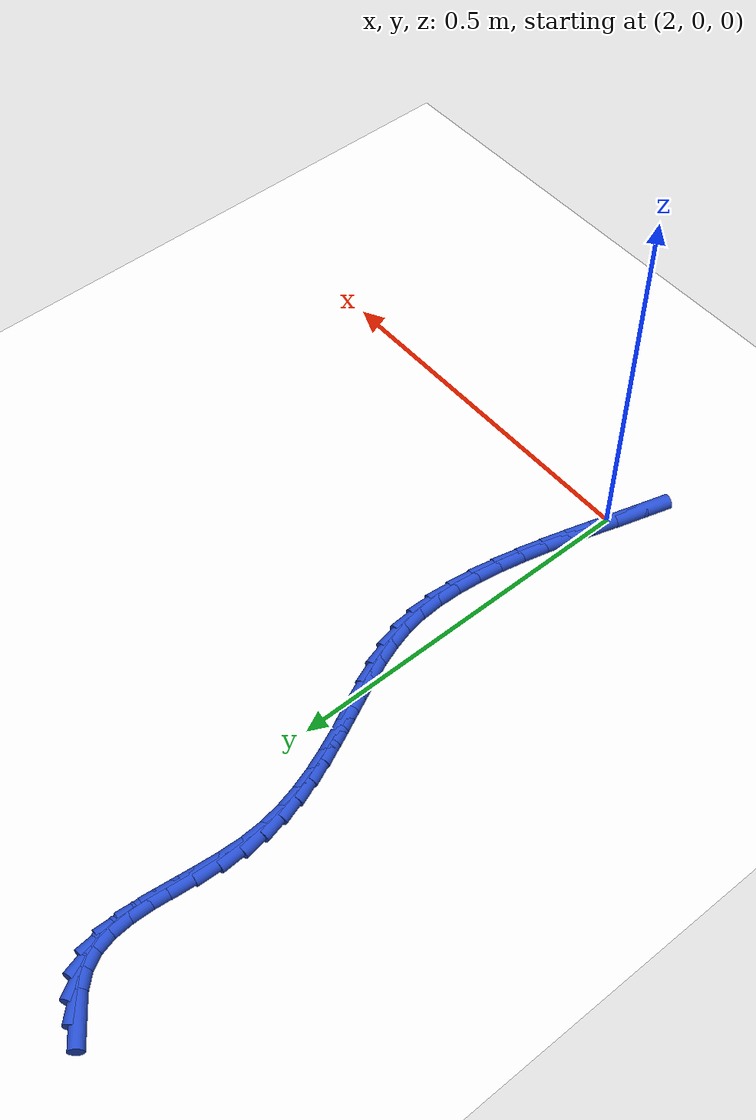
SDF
<sdf version="1.6">
 <world name="default">
  <model name="ground_plane">
   <static>1</static>
   <link name="link">
    <collision name="collision">
     <geometry><plane><normal>0 0 1</normal><size>100 100</size></plane></geometry>
     <surface><friction><ode><mu>100</mu><mu2>50</mu2></ode></friction></surface>
    </collision>
    <visual name="visual">
     <cast_shadows>0</cast_shadows>
     <geometry><plane><normal>0 0 1</normal><size>100 100</size></plane></geometry>
     <material>
      <script><uri>file://media/materials/scripts/gazebo.material</uri><name>Gazebo/WhiteGlow</name></script>
     </material>
    </visual>
   </link>
  </model>
  <model name="line">
   <link name="link_98">
    <pose>1.8763292277456687 0.9052922986258315 0.01 0 1.57 -0.6354654223614297</pose>
    <collision name="collision">
     <geometry><cylinder><radius>0.01</radius><length>0.08</length></cylinder></geometry>
    </collision>
    <visual name="visual">
     <material>
      <script><name>Gazebo/Blue</name><uri>file://media/materials/scripts/gazebo.material</uri></script>
     </material>
     <geometry><cylinder><radius>0.01</radius><length>0.08</length></cylinder></geometry>
    </visual>
   </link>
   <link name="link_99">
    <pose>1.89762387890149 0.8895870847494487 0.01 0 1.57 -0.8090941999757213</pose>
    <collision name="collision">
     <geometry><cylinder><radius>0.01</radius><length>0.08</length></cylinder></geometry>
    </collision>
    <visual name="visual">
     <material>
      <script><name>Gazebo/Blue</name><uri>file://media/materials/scripts/gazebo.material</uri></script>
     </material>
     <geometry><cylinder><radius>0.01</radius><length>0.08</length></cylinder></geometry>
    </visual>
   </link>
   <link name="link_100">
    <pose>1.9146818472040508 0.8717009240719789 0.01 0 1.57 -1.0454757915059043</pose>
    <collision name="collision">
     <geometry><cylinder><radius>0.01</radius><length>0.08</length></cylinder></geometry>
    </collision>
    <visual name="visual">
     <material>
      <script><name>Gazebo/Blue</name><uri>file://media/materials/scripts/gazebo.material</uri></script>
     </material>
     <geometry><cylinder><radius>0.01</radius><length>0.08</length></cylinder></geometry>
    </visual>
   </link>
   <link name="link_101">
    <pose>1.9266790238036149 0.8510035840859422 0.01 0 1.57 -1.3026939856862048</pose>
    <collision name="collision">
     <geometry><cylinder><radius>0.01</radius><length>0.08</length></cylinder></geometry>
    </collision>
    <visual name="visual">
     <material>
      <script><name>Gazebo/Blue</name><uri>file://media/materials/scripts/gazebo.material</uri></script>
     </material>
     <geometry><cylinder><radius>0.01</radius><length>0.08</length></cylinder></geometry>
    </visual>
   </link>
   <link name="link_102">
    <pose>1.9332368112246647 0.8271324489828652 0.01 0 1.57 -1.4917263919659192</pose>
    <collision name="collision">
     <geometry><cylinder><radius>0.01</radius><length>0.08</length></cylinder></geometry>
    </collision>
    <visual name="visual">
     <material>
      <script><name>Gazebo/Blue</name><uri>file://media/materials/scripts/gazebo.material</uri></script>
     </material>
     <geometry><cylinder><radius>0.01</radius><length>0.08</length></cylinder></geometry>
    </visual>
   </link>
   <link name="link_103">
    <pose>1.935343397925086 0.8005459251793239 0.01 0 1.57 1.5326369243613807</pose>
    <collision name="collision">
     <geometry><cylinder><radius>0.01</radius><length>0.08</length></cylinder></geometry>
    </collision>
    <visual name="visual">
     <material>
      <script><name>Gazebo/Blue</name><uri>file://media/materials/scripts/gazebo.material</uri></script>
     </material>
     <geometry><cylinder><radius>0.01</radius><length>0.08</length></cylinder></geometry>
    </visual>
   </link>
   <link name="link_104">
    <pose>1.9342482033152713 0.7718593393620259 0.01 0 1.57 1.4701293704433795</pose>
    <collision name="collision">
     <geometry><cylinder><radius>0.01</radius><length>0.08</length></cylinder></geometry>
    </collision>
    <visual name="visual">
     <material>
      <script><name>Gazebo/Blue</name><uri>file://media/materials/scripts/gazebo.material</uri></script>
     </material>
     <geometry><cylinder><radius>0.01</radius><length>0.08</length></cylinder></geometry>
    </visual>
   </link>
   <link name="link_105">
    <pose>1.9312006468056162 0.7416880182176787 0.01 0 1.57 1.450554102044886</pose>
    <collision name="collision">
     <geometry><cylinder><radius>0.01</radius><length>0.08</length></cylinder></geometry>
    </collision>
    <visual name="visual">
     <material>
      <script><name>Gazebo/Blue</name><uri>file://media/materials/scripts/gazebo.material</uri></script>
     </material>
     <geometry><cylinder><radius>0.01</radius><length>0.08</length></cylinder></geometry>
    </visual>
   </link>
   <link name="link_106">
    <pose>1.927450147806513 0.7106472884329887 0.01 0 1.57 1.468769924445494</pose>
    <collision name="collision">
     <geometry><cylinder><radius>0.01</radius><length>0.08</length></cylinder></geometry>
    </collision>
    <visual name="visual">
     <material>
      <script><name>Gazebo/Blue</name><uri>file://media/materials/scripts/gazebo.material</uri></script>
     </material>
     <geometry><cylinder><radius>0.01</radius><length>0.08</length></cylinder></geometry>
    </visual>
   </link>
   <link name="link_107">
    <pose>1.9242461257283567 0.6793524766946641 0.01 0 1.57 1.525306767367429</pose>
    <collision name="collision">
     <geometry><cylinder><radius>0.01</radius><length>0.08</length></cylinder></geometry>
    </collision>
    <visual name="visual">
     <material>
      <script><name>Gazebo/Blue</name><uri>file://media/materials/scripts/gazebo.material</uri></script>
     </material>
     <geometry><cylinder><radius>0.01</radius><length>0.08</length></cylinder></geometry>
    </visual>
   </link>
   <link name="link_108">
    <pose>1.9228379999815397 0.6484189096894115 0.01 0 1.57 -1.5208433378968895</pose>
    <collision name="collision">
     <geometry><cylinder><radius>0.01</radius><length>0.08</length></cylinder></geometry>
    </collision>
    <visual name="visual">
     <material>
      <script><name>Gazebo/Blue</name><uri>file://media/materials/scripts/gazebo.material</uri></script>
     </material>
     <geometry><cylinder><radius>0.01</radius><length>0.08</length></cylinder></geometry>
    </visual>
   </link>
   <link name="link_109">
    <pose>1.9243387460610362 0.6184007339253879 0.01 0 1.57 -1.418468475114225</pose>
    <collision name="collision">
     <geometry><cylinder><radius>0.01</radius><length>0.08</length></cylinder></geometry>
    </collision>
    <visual name="visual">
     <material>
      <script><name>Gazebo/Blue</name><uri>file://media/materials/scripts/gazebo.material</uri></script>
     </material>
     <geometry><cylinder><radius>0.01</radius><length>0.08</length></cylinder></geometry>
    </visual>
   </link>
   <link name="link_110">
    <pose>1.9287948614208552 0.5893738971082219 0.01 0 1.57 -1.3288204084667476</pose>
    <collision name="collision">
     <geometry><cylinder><radius>0.01</radius><length>0.08</length></cylinder></geometry>
    </collision>
    <visual name="visual">
     <material>
      <script><name>Gazebo/Blue</name><uri>file://media/materials/scripts/gazebo.material</uri></script>
     </material>
     <geometry><cylinder><radius>0.01</radius><length>0.08</length></cylinder></geometry>
    </visual>
   </link>
   <link name="link_111">
    <pose>1.9357511360544668 0.561189385999545 0.01 0 1.57 -1.254485420245834</pose>
    <collision name="collision">
     <geometry><cylinder><radius>0.01</radius><length>0.08</length></cylinder></geometry>
    </collision>
    <visual name="visual">
     <material>
      <script><name>Gazebo/Blue</name><uri>file://media/materials/scripts/gazebo.material</uri></script>
     </material>
     <geometry><cylinder><radius>0.01</radius><length>0.08</length></cylinder></geometry>
    </visual>
   </link>
   <link name="link_112">
    <pose>1.9447494385160182 0.5336968774148543 0.01 0 1.57 -1.1966435938141928</pose>
    <collision name="collision">
     <geometry><cylinder><radius>0.01</radius><length>0.08</length></cylinder></geometry>
    </collision>
    <visual name="visual">
     <material>
      <script><name>Gazebo/Blue</name><uri>file://media/materials/scripts/gazebo.material</uri></script>
     </material>
     <geometry><cylinder><radius>0.01</radius><length>0.08</length></cylinder></geometry>
    </visual>
   </link>
   <link name="link_113">
    <pose>1.9553316373596554 0.5067460481696471 0.01 0 1.57 -1.1556021313296305</pose>
    <collision name="collision">
     <geometry><cylinder><radius>0.01</radius><length>0.08</length></cylinder></geometry>
    </collision>
    <visual name="visual">
     <material>
      <script><name>Gazebo/Blue</name><uri>file://media/materials/scripts/gazebo.material</uri></script>
     </material>
     <geometry><cylinder><radius>0.01</radius><length>0.08</length></cylinder></geometry>
    </visual>
   </link>
   <link name="link_114">
    <pose>1.9670396011395255 0.4801865750794199 0.01 0 1.57 -1.131250892465633</pose>
    <collision name="collision">
     <geometry><cylinder><radius>0.01</radius><length>0.08</length></cylinder></geometry>
    </collision>
    <visual name="visual">
     <material>
      <script><name>Gazebo/Blue</name><uri>file://media/materials/scripts/gazebo.material</uri></script>
     </material>
     <geometry><cylinder><radius>0.01</radius><length>0.08</length></cylinder></geometry>
    </visual>
   </link>
   <link name="link_115">
    <pose>1.9794151984097739 0.4538681349596699 0.01 0 1.57 -1.1234068577112946</pose>
    <collision name="collision">
     <geometry><cylinder><radius>0.01</radius><length>0.08</length></cylinder></geometry>
    </collision>
    <visual name="visual">
     <material>
      <script><name>Gazebo/Blue</name><uri>file://media/materials/scripts/gazebo.material</uri></script>
     </material>
     <geometry><cylinder><radius>0.01</radius><length>0.08</length></cylinder></geometry>
    </visual>
   </link>
   <link name="link_116">
    <pose>1.9920002977245472 0.42764040462589425 0.01 0 1.57 -1.1320145686367045</pose>
    <collision name="collision">
     <geometry><cylinder><radius>0.01</radius><length>0.08</length></cylinder></geometry>
    </collision>
    <visual name="visual">
     <material>
      <script><name>Gazebo/Blue</name><uri>file://media/materials/scripts/gazebo.material</uri></script>
     </material>
     <geometry><cylinder><radius>0.01</radius><length>0.08</length></cylinder></geometry>
    </visual>
   </link>
   <link name="link_117">
    <pose>2.0043367676379913 0.40135306089358985 0.01 0 1.57 -1.1588983246752538</pose>
    <collision name="collision">
     <geometry><cylinder><radius>0.01</radius><length>0.08</length></cylinder></geometry>
    </collision>
    <visual name="visual">
     <material>
      <script><name>Gazebo/Blue</name><uri>file://media/materials/scripts/gazebo.material</uri></script>
     </material>
     <geometry><cylinder><radius>0.01</radius><length>0.08</length></cylinder></geometry>
    </visual>
   </link>
   <link name="link_118">
    <pose>2.015923561284986 0.37483195968844774 0.01 0 1.57 -1.21263584375604</pose>
    <collision name="collision">
     <geometry><cylinder><radius>0.01</radius><length>0.08</length></cylinder></geometry>
    </collision>
    <visual name="visual">
     <material>
      <script><name>Gazebo/Blue</name><uri>file://media/materials/scripts/gazebo.material</uri></script>
     </material>
     <geometry><cylinder><radius>0.01</radius><length>0.08</length></cylinder></geometry>
    </visual>
   </link>
   <link name="link_119">
    <pose>2.026047311556027 0.34778510518889416 0.01 0 1.57 -1.2954785612725985</pose>
    <collision name="collision">
     <geometry><cylinder><radius>0.01</radius><length>0.08</length></cylinder></geometry>
    </collision>
    <visual name="visual">
     <material>
      <script><name>Gazebo/Blue</name><uri>file://media/materials/scripts/gazebo.material</uri></script>
     </material>
     <geometry><cylinder><radius>0.01</radius><length>0.08</length></cylinder></geometry>
    </visual>
   </link>
   <link name="link_120">
    <pose>2.0339291082857756 0.3198841208519924 0.01 0 1.57 -1.4035438470537587</pose>
    <collision name="collision">
     <geometry><cylinder><radius>0.01</radius><length>0.08</length></cylinder></geometry>
    </collision>
    <visual name="visual">
     <material>
      <script><name>Gazebo/Blue</name><uri>file://media/materials/scripts/gazebo.material</uri></script>
     </material>
     <geometry><cylinder><radius>0.01</radius><length>0.08</length></cylinder></geometry>
    </visual>
   </link>
   <link name="link_121">
    <pose>2.0388358833534554 0.29082065658958 0.01 0 1.57 -1.5105533028161617</pose>
    <collision name="collision">
     <geometry><cylinder><radius>0.01</radius><length>0.08</length></cylinder></geometry>
    </collision>
    <visual name="visual">
     <material>
      <script><name>Gazebo/Blue</name><uri>file://media/materials/scripts/gazebo.material</uri></script>
     </material>
     <geometry><cylinder><radius>0.01</radius><length>0.08</length></cylinder></geometry>
    </visual>
   </link>
   <link name="link_122">
    <pose>2.0406610799930465 0.26056008913760603 0.01 0 1.57 1.541742565897831</pose>
    <collision name="collision">
     <geometry><cylinder><radius>0.01</radius><length>0.08</length></cylinder></geometry>
    </collision>
    <visual name="visual">
     <material>
      <script><name>Gazebo/Blue</name><uri>file://media/materials/scripts/gazebo.material</uri></script>
     </material>
     <geometry><cylinder><radius>0.01</radius><length>0.08</length></cylinder></geometry>
    </visual>
   </link>
   <link name="link_123">
    <pose>2.039751610737615 0.2292659188735593 0.01 0 1.57 1.4689385286845544</pose>
    <collision name="collision">
     <geometry><cylinder><radius>0.01</radius><length>0.08</length></cylinder></geometry>
    </collision>
    <visual name="visual">
     <material>
      <script><name>Gazebo/Blue</name><uri>file://media/materials/scripts/gazebo.material</uri></script>
     </material>
     <geometry><cylinder><radius>0.01</radius><length>0.08</length></cylinder></geometry>
    </visual>
   </link>
   <link name="link_124">
    <pose>2.0364645030855226 0.19710606546805873 0.01 0 1.57 1.4106428584685413</pose>
    <collision name="collision">
     <geometry><cylinder><radius>0.01</radius><length>0.08</length></cylinder></geometry>
    </collision>
    <visual name="visual">
     <material>
      <script><name>Gazebo/Blue</name><uri>file://media/materials/scripts/gazebo.material</uri></script>
     </material>
     <geometry><cylinder><radius>0.01</radius><length>0.08</length></cylinder></geometry>
    </visual>
   </link>
   <link name="link_125">
    <pose>2.031156784535133 0.16424844859172477 0.01 0 1.57 1.3649537201071555</pose>
    <collision name="collision">
     <geometry><cylinder><radius>0.01</radius><length>0.08</length></cylinder></geometry>
    </collision>
    <visual name="visual">
     <material>
      <script><name>Gazebo/Blue</name><uri>file://media/materials/scripts/gazebo.material</uri></script>
     </material>
     <geometry><cylinder><radius>0.01</radius><length>0.08</length></cylinder></geometry>
    </visual>
   </link>
   <link name="link_126">
    <pose>2.024185482584808 0.13086098791517722 0.01 0 1.57 1.3302702716914945</pose>
    <collision name="collision">
     <geometry><cylinder><radius>0.01</radius><length>0.08</length></cylinder></geometry>
    </collision>
    <visual name="visual">
     <material>
      <script><name>Gazebo/Blue</name><uri>file://media/materials/scripts/gazebo.material</uri></script>
     </material>
     <geometry><cylinder><radius>0.01</radius><length>0.08</length></cylinder></geometry>
    </visual>
   </link>
   <link name="link_127">
    <pose>2.015907624732911 0.097111603109036 0.01 0 1.57 1.3053644027478049</pose>
    <collision name="collision">
     <geometry><cylinder><radius>0.01</radius><length>0.08</length></cylinder></geometry>
    </collision>
    <visual name="visual">
     <material>
      <script><name>Gazebo/Blue</name><uri>file://media/materials/scripts/gazebo.material</uri></script>
     </material>
     <geometry><cylinder><radius>0.01</radius><length>0.08</length></cylinder></geometry>
    </visual>
   </link>
   <link name="link_128">
    <pose>2.006680238477805 0.06316821384392099 0.01 0 1.57 1.2893879719056576</pose>
    <collision name="collision">
     <geometry><cylinder><radius>0.01</radius><length>0.08</length></cylinder></geometry>
    </collision>
    <visual name="visual">
     <material>
      <script><name>Gazebo/Blue</name><uri>file://media/materials/scripts/gazebo.material</uri></script>
     </material>
     <geometry><cylinder><radius>0.01</radius><length>0.08</length></cylinder></geometry>
    </visual>
   </link>
   <link name="link_129">
    <pose>1.9968603513178516 0.029198739790452056 0.01 0 1.57 1.2818617981946117</pose>
    <collision name="collision">
     <geometry><cylinder><radius>0.01</radius><length>0.08</length></cylinder></geometry>
    </collision>
    <visual name="visual">
     <material>
      <script><name>Gazebo/Blue</name><uri>file://media/materials/scripts/gazebo.material</uri></script>
     </material>
     <geometry><cylinder><radius>0.01</radius><length>0.08</length></cylinder></geometry>
    </visual>
   </link>
   <link name="link_130">
    <pose>1.9868049907514151 -0.0046288993807508845 0.01 0 1.57 1.2826700811966623</pose>
    <collision name="collision">
     <geometry><cylinder><radius>0.01</radius><length>0.08</length></cylinder></geometry>
    </collision>
    <visual name="visual">
     <material>
      <script><name>Gazebo/Blue</name><uri>file://media/materials/scripts/gazebo.material</uri></script>
     </material>
     <geometry><cylinder><radius>0.01</radius><length>0.08</length></cylinder></geometry>
    </visual>
   </link>
   <link name="link_131">
    <pose>1.9768711842768572 -0.03814678399906807 0.01 0 1.57 1.2920723799344869</pose>
    <collision name="collision">
     <geometry><cylinder><radius>0.01</radius><length>0.08</length></cylinder></geometry>
    </collision>
    <visual name="visual">
     <material>
      <script><name>Gazebo/Blue</name><uri>file://media/materials/scripts/gazebo.material</uri></script>
     </material>
     <geometry><cylinder><radius>0.01</radius><length>0.08</length></cylinder></geometry>
    </visual>
   </link>
  </model>
 </world>
</sdf>
